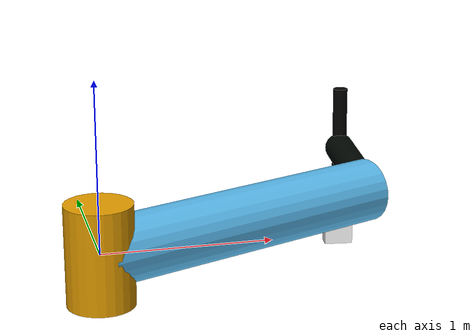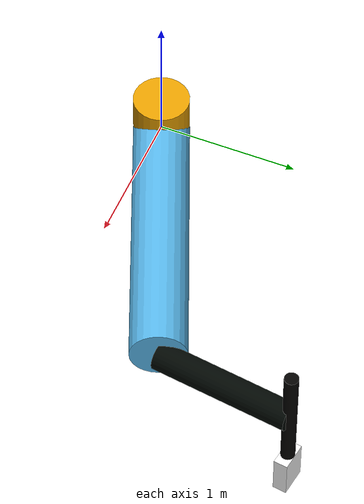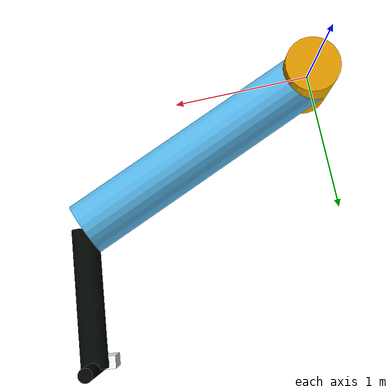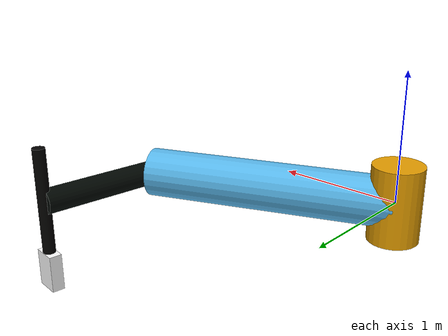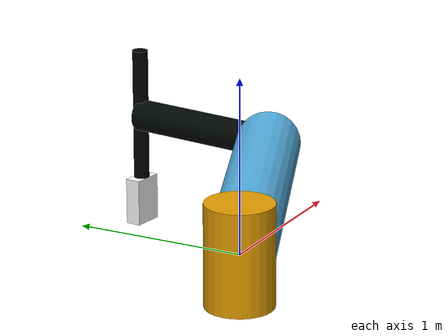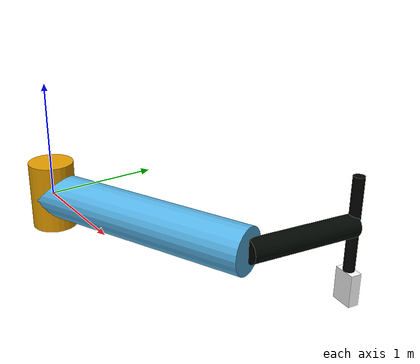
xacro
<?xml version="1.0" standalone="no"?>
<robot xmlns:xacro="http://www.ros.org/wiki/xacro"
       name="test_robot">

<xacro:property name="r1" value="0"/>
<xacro:property name="p1" value="-0"/>
<xacro:property name="yy1" value="0.3925"/>
<xacro:property name="x1" value="1.84791"/>
<xacro:property name="y1" value="0.764999"/>
<xacro:property name="z1" value="0"/>
<xacro:property name="l1" value="2"/>
<xacro:property name="r2" value="3.14"/>
<xacro:property name="p2" value="-0"/>
<xacro:property name="yy2" value="1.04667"/>
<xacro:property name="x2" value="0.50046"/>
<xacro:property name="y2" value="0.86576"/>
<xacro:property name="z2" value="0"/>
<xacro:property name="l2" value="1"/>
<xacro:property name="r3" value="0"/>
<xacro:property name="p3" value="-0"/>
<xacro:property name="yy3" value="0"/>
<xacro:property name="x3" value="0"/>
<xacro:property name="y3" value="0"/>
<xacro:property name="z3" value="1"/>
<xacro:property name="l3" value="1"/>

	<link name="base_link">
		<visual>
			<geometry>
				<cylinder length="0.6" radius="0.2"/>
			</geometry>
		</visual>
	</link>

	<link name="base_link1">
		<visual>
			<geometry>
				<cylinder length="${l1}" radius="0.2"/>
			</geometry>
			<origin xyz="${x1/2} ${y1/2} ${z1/2}" rpy="${r1} 1.57 ${yy1} " />
		</visual>
	</link>

	<link name="link1">
		<visual>
			<geometry>
				<cylinder length="${l2}" radius="0.1"/>
			</geometry>
			<material name="we">
				<color rgba="0 6 2 1"/>
			</material>
			<origin xyz="${x2/2} ${y2/2} ${z2/2}" rpy="3.14 1.5707 ${yy2}"/>
		</visual>
	</link>

	<link name="link2">
		<visual>
			<geometry>
				<cylinder length="${l3}" radius="0.05"/>
			</geometry>
			<origin xyz="${x3/2} ${y3/2} ${z3/2}" rpy="0 0 0" />
			<material name="w">
				<color rgba="3 2 1 1"/>
			</material>
		</visual>
	</link>

	<link name="link3">
		<visual>
			<geometry>
				<box size=".1 .2 .3"/>
			</geometry>
			<material name="white">
				<color rgba="1 1 1 1"/>
			</material>
		</visual>
	</link>

	<joint name="joint" type="continuous">
		<parent link="base_link1"/>
		<child link="base_link"/>
		<limit effort="1000.0" lower="-3.5" upper="1.6" velocity="0.5"/>
		<axis xyz="0 0 1" />
	</joint>

	<joint name="joint1" type="revolute">
		<parent link="base_link1"/>
		<child link="link1"/>
		<origin xyz="${x1} ${y1} ${z1}" rpy="${r1} ${p1} ${yy1}" />
		         <limit effort="1000.0" lower="-3.5" upper="1.6" velocity="0.5"/>
		<axis xyz="0 0 1" />
	</joint>

	<joint name="joint2" type="prismatic">
		<parent link="link1"/>
		<child link="link2"/>
		<origin xyz="${x2} ${y2} ${z2}" rpy="${r2} ${p2} ${yy2}" />
		<limit effort="1000.0" lower="-0.81" upper="-0.05" velocity="0.5"/>
		<axis xyz="0 0 1" />
	</joint>

	<joint name="joint3" type="fixed">
		<parent link="link2"/>
		<child link="link3"/>
		<origin xyz="${x3} ${y3} ${z3}" rpy="${r3} ${p3} ${yy3}" />
		<limit effort="1000.0" lower="-0.6" upper="-0.11" velocity="0.5"/>
		<axis xyz="0 0 1" />
	</joint>
</robot>
